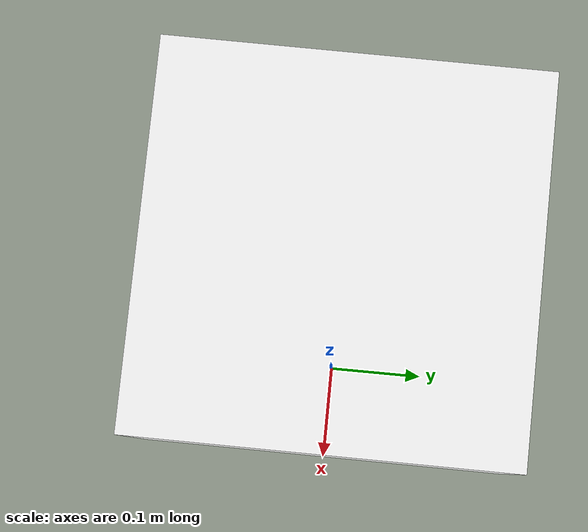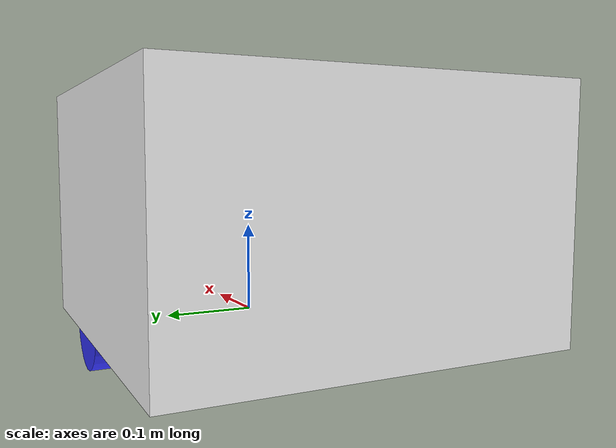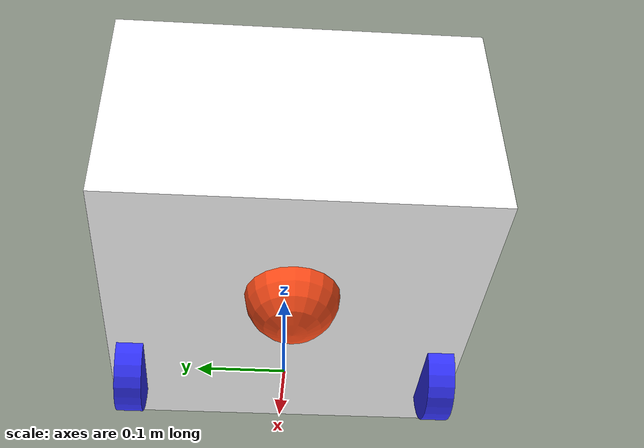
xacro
<?xml version="1.0"?>
<robot xmlns:xacro="http://www.ros.org/wiki/xacro">
    <xacro:include filename="inertial_macros.xacro"/>

    <!-- RViz colors -->
    <material name="white">
        <color rgba="1 1 1 1"/>
    </material>

    <material name="orange">
        <color rgba="1 0.3 0.1 1"/>
    </material>

    <material name="blue">
        <color rgba="0.2 0.2 1 1"/>
    </material>

    <material name="black">
        <color rgba="0 0 0 1"/>
    </material>

    <!-- Base link -->
    <link name="base_link"></link>

    <!-- Chassis -->
    <joint name="chassis_joint" type="fixed">
        <parent link="base_link"/>
        <child link="chassis"/>
        <origin xyz="-0.3 0 0"/>
    </joint>
    <link name="chassis">
        <visual>
            <origin xyz="0.2 0 0.125"/>
            <geometry>
                <box size="0.4 0.4 0.25"/>
            </geometry>
            <material name="white"/>
        </visual>
        <collision>
            <origin xyz="0.2 0 0.125"/>
            <geometry>
                <box size="0.4 0.4 0.25"/>
            </geometry>
        </collision>
        <xacro:inertial_box mass="1.0" x="0.4" y="0.4" z="0.25">
            <origin xyz="0.2 0 0.125" rpy="0 0 0"/>
        </xacro:inertial_box>
    </link>
    <gazebo reference="chassis">
        <material>
            <ambient>1 1 1 1</ambient>
            <diffuse>1 1 1 1</diffuse>
            <specular>0.5 0.5 0.5 1</specular>
        </material>
    </gazebo>

    <!-- Left wheel -->
    <joint name="left_wheel_joint" type="continuous">
        <parent link="base_link"/>
        <child link="left_wheel"/>
        <origin xyz="0 0.175 0" rpy="-${pi/2} 0 0"/>
        <axis xyz="0 0 -1"/>
    </joint>
    <link name="left_wheel">
        <visual>
            <geometry>
                <cylinder radius="0.05" length="0.03"/>
            </geometry>
            <material name="blue"/>
        </visual>
        <collision>
            <geometry>
                <cylinder radius="0.05" length="0.03"/>
            </geometry>
        </collision>
        <xacro:inertial_cylinder mass="0.5" length="0.03" radius="0.05">
            <origin xyz="0 0 0" rpy="0 0 0"/>
        </xacro:inertial_cylinder>
    </link>
    <gazebo reference="left_wheel">
        <material>
            <ambient>0.2 0.2 1 1</ambient>
            <diffuse>0.2 0.2 1 1</diffuse>
            <specular>0.5 0.5 0.5 1</specular>
        </material>
    </gazebo>

    <!-- Right wheel -->
    <joint name="right_wheel_joint" type="continuous">
        <parent link="base_link"/>
        <child link="right_wheel"/>
        <origin xyz="0 -0.175 0" rpy="${pi/2} 0 0"/>
        <axis xyz="0 0 -1"/>
    </joint>
    <link name="right_wheel">
        <visual>
            <geometry>
                <cylinder radius="0.05" length="0.03"/>
            </geometry>
            <material name="blue"/>
        </visual>
        <collision>
            <geometry>
                <cylinder radius="0.05" length="0.03"/>
            </geometry>
        </collision>
        <xacro:inertial_cylinder mass="0.5" length="0.03" radius="0.05">
            <origin xyz="0 0 0" rpy="0 0 0"/>
        </xacro:inertial_cylinder>
    </link>
    <gazebo reference="right_wheel">
        <material>
            <ambient>0.2 0.2 1 1</ambient>
            <diffuse>0.2 0.2 1 1</diffuse>
            <specular>0.5 0.5 0.5 1</specular>
        </material>
    </gazebo>

    <!-- Caster wheel -->
    <joint name="caster_wheel_joint" type="fixed">
        <parent link="chassis"/>
        <child link="caster_wheel"/>
        <origin xyz="0.15 0 0"/>
    </joint>
    <link name="caster_wheel">
        <visual>
            <geometry>
                <sphere radius="0.05"/>
            </geometry>
            <material name="orange"/>
        </visual>
        <collision>
            <geometry>
                <sphere radius="0.05"/>
            </geometry>
        </collision>
        <xacro:inertial_sphere mass="0.2" radius="0.05">
            <origin xyz="0 0 0" rpy="0 0 0"/>
        </xacro:inertial_sphere>
    </link>
    <gazebo reference="caster_wheel">
        <material>
            <ambient>1 0.3 0.1 1</ambient>
            <diffuse>1 0.3 0.1 1</diffuse>
            <specular>0.5 0.5 0.5 1</specular>
        </material>
        <mu1 value="0.001"/>
        <mu2 value="0.001"/>
    </gazebo>

</robot>
